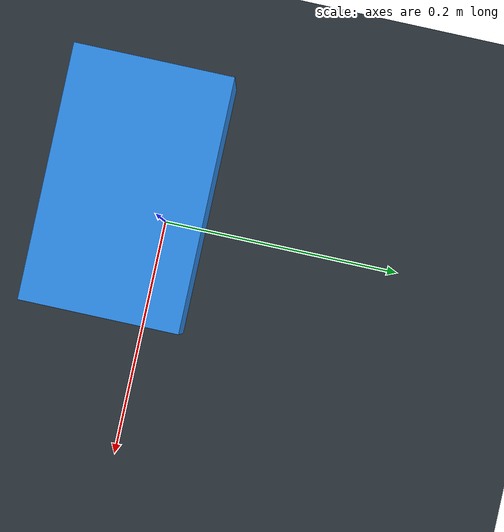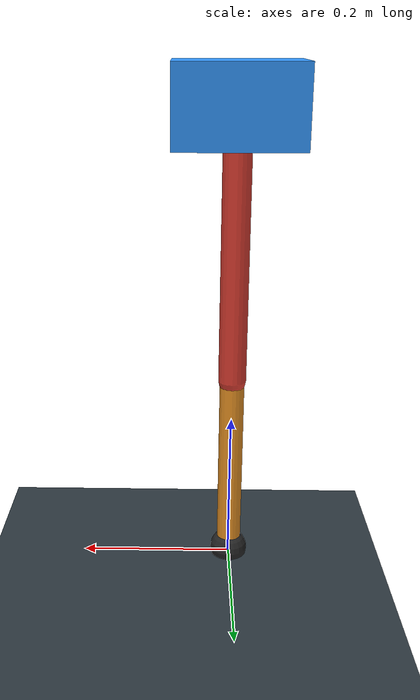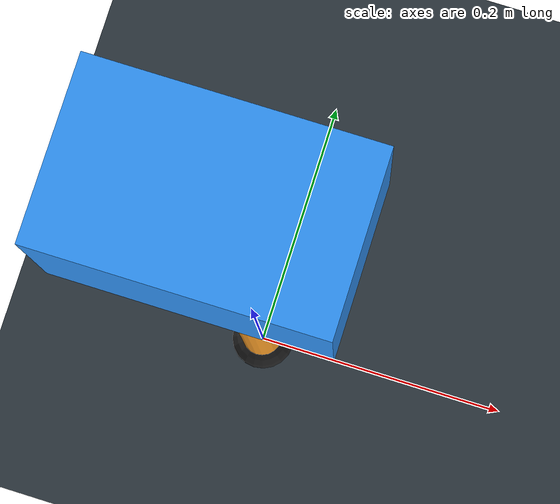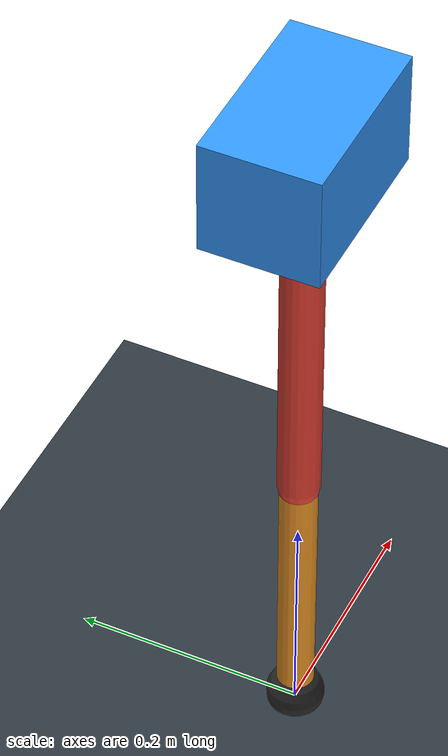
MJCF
<mujoco model="single_axis_two_bar">
  <compiler angle="radian" inertiafromgeom="true"/>
  <option timestep="0.001" integrator="implicitfast" gravity="0 0 -9.81"/>
  <default>
    <joint damping="0.08"/>
    <geom friction="1.2 0.01 0.0001" condim="3"/>
  </default>
  <worldbody>
    <geom name="floor" type="plane" size="5 5 0.1" rgba="0.18 0.22 0.25 1"/>
    <body name="carriage" pos="0 0 0.605412351435785">
      <joint name="pole_slide" type="slide" axis="0 0 1"/>
      <geom name="payload" type="box" size="0.08 0.05 0.05" mass="2.637173413378635" rgba="0.2 0.6 1 1"/>
      <body name="thigh" pos="0 0 0">
        <joint name="hip" type="hinge" axis="0 1 0"/>
        <geom name="thigh_link" type="capsule" fromto="0 0 0 0 0 -0.3498270158430691" size="0.018" mass="0.24925637134436052" rgba="0.9 0.25 0.2 1"/>
        <body name="shank" pos="0 0 -0.3498270158430691">
          <joint name="knee" type="hinge" axis="0 1 0"/>
          <geom name="shank_link" type="capsule" fromto="0 0 0 0 0 -0.248536233059802" size="0.016" mass="0.1770853501716766" rgba="0.95 0.6 0.15 1"/>
          <geom name="foot" type="sphere" pos="0 0 -0.248536233059802" size="0.025" mass="0.03" rgba="0.15 0.15 0.15 1"/>
          <site name="toe" pos="0 0 -0.248536233059802" size="0.008"/>
        </body>
      </body>
    </body>
  </worldbody>
  <actuator>
    <motor name="hip_motor" joint="hip" ctrlrange="-31.639466286033027 31.639466286033027"/>
    <motor name="knee_motor" joint="knee" ctrlrange="-109.46075592352425 109.46075592352425"/>
  </actuator>
</mujoco>
